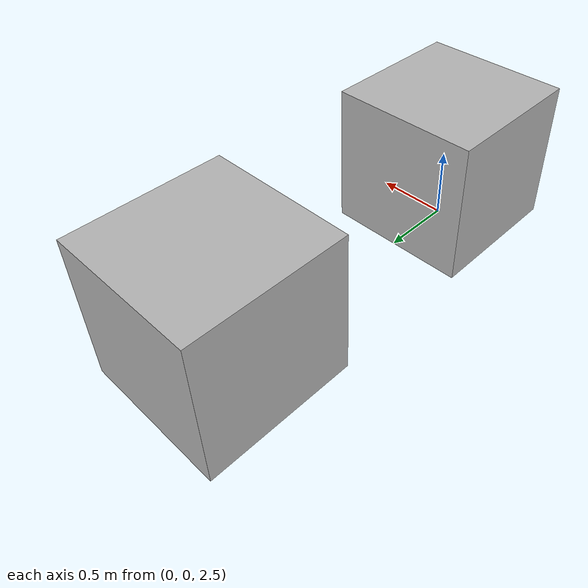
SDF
<?xml version='1.0'?>
<sdf version='1.8'>

  <model name="connected_nested_models">
    <model name="model_00">
      <link name="link_00">
        <pose>0 0 3 0 0 0</pose>
        <collision name="collision_00">
          <geometry>
            <box>
              <size>1 1 1</size>
            </box>
          </geometry>
        </collision>
        <visual name="visual_00">
          <geometry>
            <box>
              <size>1 1 1</size>
            </box>
          </geometry>
        </visual>
      </link>
      <link name="link_01">
        <pose relative_to="link_00">0 2 0 0 0 0</pose>
        <collision name="collision_01">
          <geometry>
            <box>
              <size>1 1 1</size>
            </box>
          </geometry>
        </collision>
        <visual name="visual_01">
          <geometry>
            <box>
              <size>1 1 1</size>
            </box>
          </geometry>
        </visual>

      </link>
      <joint name="joint_01" type="revolute">
        <pose relative_to="link_00">0 0 0 0 0 0</pose>
        <parent>link_00</parent>
        <child>link_01</child>
        <axis>
          <xyz>1 0 0</xyz>
        </axis>
      </joint>

    </model>
  </model>
</sdf>
